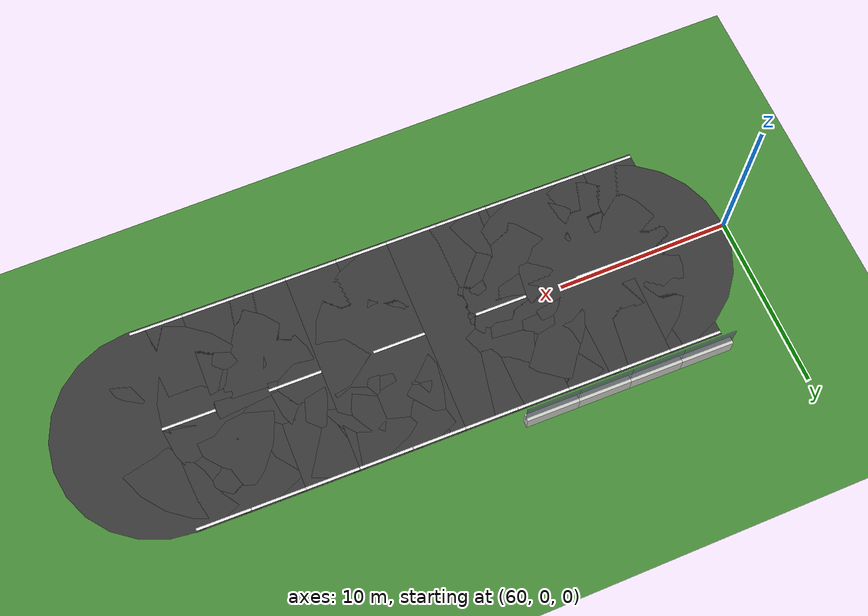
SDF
<sdf version="1.6">
 <world name="sem_silesia_ring_2026">
  <model name="ground_plane">
   <static>true</static>
   <link name="link">
    <collision name="collision">
     <geometry><plane><normal>0 0 1</normal><size>1200 1200</size></plane></geometry>
     <surface><friction><ode><mu>0.6</mu><mu2>0.6</mu2></ode></friction></surface>
    </collision>
    <visual name="visual">
     <geometry><plane><normal>0 0 1</normal><size>1200 1200</size></plane></geometry>
     <material><ambient>0.28 0.55 0.22 1</ambient><diffuse>0.28 0.55 0.22 1</diffuse></material>
    </visual>
   </link>
  </model>
  <model name="road_s21">
   <static>true</static>
   <pose>64.4917 -0.1593 0.0030 0 0 -0.0169</pose>
   <link name="link">
    <visual name="v">
     <geometry><box><size>3.0025 12.0000 0.0060</size></box></geometry>
     <material><ambient>0.22 0.22 0.22 1</ambient><diffuse>0.22 0.22 0.22 1</diffuse></material>
    </visual>
    <collision name="c">
     <geometry><box><size>3.0025 12.0000 0.0060</size></box></geometry>
     <surface><friction><ode><mu>0.9</mu><mu2>0.9</mu2></ode></friction></surface>
    </collision>
   </link>
  </model>
  <model name="wl_L_s21">
   <static>true</static>
   <pose>64.5907 5.6898 0.0070 0 0 -0.0169</pose>
   <link name="link">
    <visual name="v">
     <geometry><box><size>3.0025 0.1500 0.0080</size></box></geometry>
     <material><ambient>0.95 0.95 0.95 1</ambient><diffuse>0.95 0.95 0.95 1</diffuse></material>
    </visual>
   </link>
  </model>
  <model name="wl_R_s21">
   <static>true</static>
   <pose>64.3927 -6.0085 0.0070 0 0 -0.0169</pose>
   <link name="link">
    <visual name="v">
     <geometry><box><size>3.0025 0.1500 0.0080</size></box></geometry>
     <material><ambient>0.95 0.95 0.95 1</ambient><diffuse>0.95 0.95 0.95 1</diffuse></material>
    </visual>
   </link>
  </model>
  <model name="road_s22">
   <static>true</static>
   <pose>67.4938 -0.2084 0.0030 0 0 -0.0158</pose>
   <link name="link">
    <visual name="v">
     <geometry><box><size>3.0025 12.0000 0.0060</size></box></geometry>
     <material><ambient>0.22 0.22 0.22 1</ambient><diffuse>0.22 0.22 0.22 1</diffuse></material>
    </visual>
    <collision name="c">
     <geometry><box><size>3.0025 12.0000 0.0060</size></box></geometry>
     <surface><friction><ode><mu>0.9</mu><mu2>0.9</mu2></ode></friction></surface>
    </collision>
   </link>
  </model>
  <model name="road_jnt22">
   <static>true</static>
   <pose>65.9928 -0.1847 0.0030 0 0 0</pose>
   <link name="link">
    <visual name="v">
     <geometry><cylinder><radius>6.0000</radius><length>0.0060</length></cylinder></geometry>
     <material><ambient>0.22 0.22 0.22 1</ambient><diffuse>0.22 0.22 0.22 1</diffuse></material>
    </visual>
    <collision name="c">
     <geometry><cylinder><radius>6.0000</radius><length>0.0060</length></cylinder></geometry>
     <surface><friction><ode><mu>0.9</mu><mu2>0.9</mu2></ode></friction></surface>
    </collision>
   </link>
  </model>
  <model name="wl_L_s22">
   <static>true</static>
   <pose>67.5861 5.6409 0.0070 0 0 -0.0158</pose>
   <link name="link">
    <visual name="v">
     <geometry><box><size>3.0025 0.1500 0.0080</size></box></geometry>
     <material><ambient>0.95 0.95 0.95 1</ambient><diffuse>0.95 0.95 0.95 1</diffuse></material>
    </visual>
   </link>
  </model>
  <model name="wl_R_s22">
   <static>true</static>
   <pose>67.4016 -6.0577 0.0070 0 0 -0.0158</pose>
   <link name="link">
    <visual name="v">
     <geometry><box><size>3.0025 0.1500 0.0080</size></box></geometry>
     <material><ambient>0.95 0.95 0.95 1</ambient><diffuse>0.95 0.95 0.95 1</diffuse></material>
    </visual>
   </link>
  </model>
  <model name="cd_s22">
   <static>true</static>
   <pose>67.4938 -0.2084 0.0070 0 0 -0.0158</pose>
   <link name="link">
    <visual name="v">
     <geometry><box><size>3.0025 0.1500 0.0080</size></box></geometry>
     <material><ambient>0.95 0.95 0.95 1</ambient><diffuse>0.95 0.95 0.95 1</diffuse></material>
    </visual>
   </link>
  </model>
  <model name="road_s23">
   <static>true</static>
   <pose>70.4960 -0.2546 0.0030 0 0 -0.0150</pose>
   <link name="link">
    <visual name="v">
     <geometry><box><size>3.0025 12.0000 0.0060</size></box></geometry>
     <material><ambient>0.22 0.22 0.22 1</ambient><diffuse>0.22 0.22 0.22 1</diffuse></material>
    </visual>
    <collision name="c">
     <geometry><box><size>3.0025 12.0000 0.0060</size></box></geometry>
     <surface><friction><ode><mu>0.9</mu><mu2>0.9</mu2></ode></friction></surface>
    </collision>
   </link>
  </model>
  <model name="road_jnt23">
   <static>true</static>
   <pose>68.9949 -0.2321 0.0030 0 0 0</pose>
   <link name="link">
    <visual name="v">
     <geometry><cylinder><radius>6.0000</radius><length>0.0060</length></cylinder></geometry>
     <material><ambient>0.22 0.22 0.22 1</ambient><diffuse>0.22 0.22 0.22 1</diffuse></material>
    </visual>
    <collision name="c">
     <geometry><cylinder><radius>6.0000</radius><length>0.0060</length></cylinder></geometry>
     <surface><friction><ode><mu>0.9</mu><mu2>0.9</mu2></ode></friction></surface>
    </collision>
   </link>
  </model>
  <model name="wl_L_s23">
   <static>true</static>
   <pose>70.5839 5.5947 0.0070 0 0 -0.0150</pose>
   <link name="link">
    <visual name="v">
     <geometry><box><size>3.0025 0.1500 0.0080</size></box></geometry>
     <material><ambient>0.95 0.95 0.95 1</ambient><diffuse>0.95 0.95 0.95 1</diffuse></material>
    </visual>
   </link>
  </model>
  <model name="wl_R_s23">
   <static>true</static>
   <pose>70.4082 -6.1040 0.0070 0 0 -0.0150</pose>
   <link name="link">
    <visual name="v">
     <geometry><box><size>3.0025 0.1500 0.0080</size></box></geometry>
     <material><ambient>0.95 0.95 0.95 1</ambient><diffuse>0.95 0.95 0.95 1</diffuse></material>
    </visual>
   </link>
  </model>
  <model name="road_s24">
   <static>true</static>
   <pose>73.4982 -0.2992 0.0030 0 0 -0.0146</pose>
   <link name="link">
    <visual name="v">
     <geometry><box><size>3.0025 12.0000 0.0060</size></box></geometry>
     <material><ambient>0.22 0.22 0.22 1</ambient><diffuse>0.22 0.22 0.22 1</diffuse></material>
    </visual>
    <collision name="c">
     <geometry><box><size>3.0025 12.0000 0.0060</size></box></geometry>
     <surface><friction><ode><mu>0.9</mu><mu2>0.9</mu2></ode></friction></surface>
    </collision>
   </link>
  </model>
  <model name="road_jnt24">
   <static>true</static>
   <pose>71.9971 -0.2772 0.0030 0 0 0</pose>
   <link name="link">
    <visual name="v">
     <geometry><cylinder><radius>6.0000</radius><length>0.0060</length></cylinder></geometry>
     <material><ambient>0.22 0.22 0.22 1</ambient><diffuse>0.22 0.22 0.22 1</diffuse></material>
    </visual>
    <collision name="c">
     <geometry><cylinder><radius>6.0000</radius><length>0.0060</length></cylinder></geometry>
     <surface><friction><ode><mu>0.9</mu><mu2>0.9</mu2></ode></friction></surface>
    </collision>
   </link>
  </model>
  <model name="wl_L_s24">
   <static>true</static>
   <pose>73.5839 5.5502 0.0070 0 0 -0.0146</pose>
   <link name="link">
    <visual name="v">
     <geometry><box><size>3.0025 0.1500 0.0080</size></box></geometry>
     <material><ambient>0.95 0.95 0.95 1</ambient><diffuse>0.95 0.95 0.95 1</diffuse></material>
    </visual>
   </link>
  </model>
  <model name="wl_R_s24">
   <static>true</static>
   <pose>73.4126 -6.1485 0.0070 0 0 -0.0146</pose>
   <link name="link">
    <visual name="v">
     <geometry><box><size>3.0025 0.1500 0.0080</size></box></geometry>
     <material><ambient>0.95 0.95 0.95 1</ambient><diffuse>0.95 0.95 0.95 1</diffuse></material>
    </visual>
   </link>
  </model>
  <model name="cd_s24">
   <static>true</static>
   <pose>73.4982 -0.2992 0.0070 0 0 -0.0146</pose>
   <link name="link">
    <visual name="v">
     <geometry><box><size>3.0025 0.1500 0.0080</size></box></geometry>
     <material><ambient>0.95 0.95 0.95 1</ambient><diffuse>0.95 0.95 0.95 1</diffuse></material>
    </visual>
   </link>
  </model>
  <model name="road_s25">
   <static>true</static>
   <pose>76.5005 -0.3431 0.0030 0 0 -0.0146</pose>
   <link name="link">
    <visual name="v">
     <geometry><box><size>3.0025 12.0000 0.0060</size></box></geometry>
     <material><ambient>0.22 0.22 0.22 1</ambient><diffuse>0.22 0.22 0.22 1</diffuse></material>
    </visual>
    <collision name="c">
     <geometry><box><size>3.0025 12.0000 0.0060</size></box></geometry>
     <surface><friction><ode><mu>0.9</mu><mu2>0.9</mu2></ode></friction></surface>
    </collision>
   </link>
  </model>
  <model name="road_jnt25">
   <static>true</static>
   <pose>74.9993 -0.3211 0.0030 0 0 0</pose>
   <link name="link">
    <visual name="v">
     <geometry><cylinder><radius>6.0000</radius><length>0.0060</length></cylinder></geometry>
     <material><ambient>0.22 0.22 0.22 1</ambient><diffuse>0.22 0.22 0.22 1</diffuse></material>
    </visual>
    <collision name="c">
     <geometry><cylinder><radius>6.0000</radius><length>0.0060</length></cylinder></geometry>
     <surface><friction><ode><mu>0.9</mu><mu2>0.9</mu2></ode></friction></surface>
    </collision>
   </link>
  </model>
  <model name="wl_L_s25">
   <static>true</static>
   <pose>76.5861 5.5063 0.0070 0 0 -0.0146</pose>
   <link name="link">
    <visual name="v">
     <geometry><box><size>3.0025 0.1500 0.0080</size></box></geometry>
     <material><ambient>0.95 0.95 0.95 1</ambient><diffuse>0.95 0.95 0.95 1</diffuse></material>
    </visual>
   </link>
  </model>
  <model name="wl_R_s25">
   <static>true</static>
   <pose>76.4148 -6.1925 0.0070 0 0 -0.0146</pose>
   <link name="link">
    <visual name="v">
     <geometry><box><size>3.0025 0.1500 0.0080</size></box></geometry>
     <material><ambient>0.95 0.95 0.95 1</ambient><diffuse>0.95 0.95 0.95 1</diffuse></material>
    </visual>
   </link>
  </model>
  <model name="road_s26">
   <static>true</static>
   <pose>79.5027 -0.3877 0.0030 0 0 -0.0150</pose>
   <link name="link">
    <visual name="v">
     <geometry><box><size>3.0025 12.0000 0.0060</size></box></geometry>
     <material><ambient>0.22 0.22 0.22 1</ambient><diffuse>0.22 0.22 0.22 1</diffuse></material>
    </visual>
    <collision name="c">
     <geometry><box><size>3.0025 12.0000 0.0060</size></box></geometry>
     <surface><friction><ode><mu>0.9</mu><mu2>0.9</mu2></ode></friction></surface>
    </collision>
   </link>
  </model>
  <model name="road_jnt26">
   <static>true</static>
   <pose>78.0016 -0.3651 0.0030 0 0 0</pose>
   <link name="link">
    <visual name="v">
     <geometry><cylinder><radius>6.0000</radius><length>0.0060</length></cylinder></geometry>
     <material><ambient>0.22 0.22 0.22 1</ambient><diffuse>0.22 0.22 0.22 1</diffuse></material>
    </visual>
    <collision name="c">
     <geometry><cylinder><radius>6.0000</radius><length>0.0060</length></cylinder></geometry>
     <surface><friction><ode><mu>0.9</mu><mu2>0.9</mu2></ode></friction></surface>
    </collision>
   </link>
  </model>
  <model name="wl_L_s26">
   <static>true</static>
   <pose>79.5906 5.4617 0.0070 0 0 -0.0150</pose>
   <link name="link">
    <visual name="v">
     <geometry><box><size>3.0025 0.1500 0.0080</size></box></geometry>
     <material><ambient>0.95 0.95 0.95 1</ambient><diffuse>0.95 0.95 0.95 1</diffuse></material>
    </visual>
   </link>
  </model>
  <model name="wl_R_s26">
   <static>true</static>
   <pose>79.4147 -6.2370 0.0070 0 0 -0.0150</pose>
   <link name="link">
    <visual name="v">
     <geometry><box><size>3.0025 0.1500 0.0080</size></box></geometry>
     <material><ambient>0.95 0.95 0.95 1</ambient><diffuse>0.95 0.95 0.95 1</diffuse></material>
    </visual>
   </link>
  </model>
  <model name="cd_s26">
   <static>true</static>
   <pose>79.5027 -0.3877 0.0070 0 0 -0.0150</pose>
   <link name="link">
    <visual name="v">
     <geometry><box><size>3.0025 0.1500 0.0080</size></box></geometry>
     <material><ambient>0.95 0.95 0.95 1</ambient><diffuse>0.95 0.95 0.95 1</diffuse></material>
    </visual>
   </link>
  </model>
  <model name="road_s27">
   <static>true</static>
   <pose>82.5048 -0.4340 0.0030 0 0 -0.0158</pose>
   <link name="link">
    <visual name="v">
     <geometry><box><size>3.0025 12.0000 0.0060</size></box></geometry>
     <material><ambient>0.22 0.22 0.22 1</ambient><diffuse>0.22 0.22 0.22 1</diffuse></material>
    </visual>
    <collision name="c">
     <geometry><box><size>3.0025 12.0000 0.0060</size></box></geometry>
     <surface><friction><ode><mu>0.9</mu><mu2>0.9</mu2></ode></friction></surface>
    </collision>
   </link>
  </model>
  <model name="road_jnt27">
   <static>true</static>
   <pose>81.0038 -0.4102 0.0030 0 0 0</pose>
   <link name="link">
    <visual name="v">
     <geometry><cylinder><radius>6.0000</radius><length>0.0060</length></cylinder></geometry>
     <material><ambient>0.22 0.22 0.22 1</ambient><diffuse>0.22 0.22 0.22 1</diffuse></material>
    </visual>
    <collision name="c">
     <geometry><cylinder><radius>6.0000</radius><length>0.0060</length></cylinder></geometry>
     <surface><friction><ode><mu>0.9</mu><mu2>0.9</mu2></ode></friction></surface>
    </collision>
   </link>
  </model>
  <model name="wl_L_s27">
   <static>true</static>
   <pose>82.5974 5.4153 0.0070 0 0 -0.0158</pose>
   <link name="link">
    <visual name="v">
     <geometry><box><size>3.0025 0.1500 0.0080</size></box></geometry>
     <material><ambient>0.95 0.95 0.95 1</ambient><diffuse>0.95 0.95 0.95 1</diffuse></material>
    </visual>
   </link>
  </model>
  <model name="wl_R_s27">
   <static>true</static>
   <pose>82.4123 -6.2833 0.0070 0 0 -0.0158</pose>
   <link name="link">
    <visual name="v">
     <geometry><box><size>3.0025 0.1500 0.0080</size></box></geometry>
     <material><ambient>0.95 0.95 0.95 1</ambient><diffuse>0.95 0.95 0.95 1</diffuse></material>
    </visual>
   </link>
  </model>
  <model name="road_s28">
   <static>true</static>
   <pose>85.5070 -0.4832 0.0030 0 0 -0.0170</pose>
   <link name="link">
    <visual name="v">
     <geometry><box><size>3.0025 12.0000 0.0060</size></box></geometry>
     <material><ambient>0.22 0.22 0.22 1</ambient><diffuse>0.22 0.22 0.22 1</diffuse></material>
    </visual>
    <collision name="c">
     <geometry><box><size>3.0025 12.0000 0.0060</size></box></geometry>
     <surface><friction><ode><mu>0.9</mu><mu2>0.9</mu2></ode></friction></surface>
    </collision>
   </link>
  </model>
  <model name="road_jnt28">
   <static>true</static>
   <pose>84.0059 -0.4577 0.0030 0 0 0</pose>
   <link name="link">
    <visual name="v">
     <geometry><cylinder><radius>6.0000</radius><length>0.0060</length></cylinder></geometry>
     <material><ambient>0.22 0.22 0.22 1</ambient><diffuse>0.22 0.22 0.22 1</diffuse></material>
    </visual>
    <collision name="c">
     <geometry><cylinder><radius>6.0000</radius><length>0.0060</length></cylinder></geometry>
     <surface><friction><ode><mu>0.9</mu><mu2>0.9</mu2></ode></friction></surface>
    </collision>
   </link>
  </model>
  <model name="wl_L_s28">
   <static>true</static>
   <pose>85.6064 5.3659 0.0070 0 0 -0.0170</pose>
   <link name="link">
    <visual name="v">
     <geometry><box><size>3.0025 0.1500 0.0080</size></box></geometry>
     <material><ambient>0.95 0.95 0.95 1</ambient><diffuse>0.95 0.95 0.95 1</diffuse></material>
    </visual>
   </link>
  </model>
  <model name="wl_R_s28">
   <static>true</static>
   <pose>85.4076 -6.3324 0.0070 0 0 -0.0170</pose>
   <link name="link">
    <visual name="v">
     <geometry><box><size>3.0025 0.1500 0.0080</size></box></geometry>
     <material><ambient>0.95 0.95 0.95 1</ambient><diffuse>0.95 0.95 0.95 1</diffuse></material>
    </visual>
   </link>
  </model>
  <model name="cd_s28">
   <static>true</static>
   <pose>85.5070 -0.4832 0.0070 0 0 -0.0170</pose>
   <link name="link">
    <visual name="v">
     <geometry><box><size>3.0025 0.1500 0.0080</size></box></geometry>
     <material><ambient>0.95 0.95 0.95 1</ambient><diffuse>0.95 0.95 0.95 1</diffuse></material>
    </visual>
   </link>
  </model>
  <model name="road_s29">
   <static>true</static>
   <pose>88.5090 -0.5366 0.0030 0 0 -0.0186</pose>
   <link name="link">
    <visual name="v">
     <geometry><box><size>3.0025 12.0000 0.0060</size></box></geometry>
     <material><ambient>0.22 0.22 0.22 1</ambient><diffuse>0.22 0.22 0.22 1</diffuse></material>
    </visual>
    <collision name="c">
     <geometry><box><size>3.0025 12.0000 0.0060</size></box></geometry>
     <surface><friction><ode><mu>0.9</mu><mu2>0.9</mu2></ode></friction></surface>
    </collision>
   </link>
  </model>
  <model name="road_jnt29">
   <static>true</static>
   <pose>87.0080 -0.5087 0.0030 0 0 0</pose>
   <link name="link">
    <visual name="v">
     <geometry><cylinder><radius>6.0000</radius><length>0.0060</length></cylinder></geometry>
     <material><ambient>0.22 0.22 0.22 1</ambient><diffuse>0.22 0.22 0.22 1</diffuse></material>
    </visual>
    <collision name="c">
     <geometry><cylinder><radius>6.0000</radius><length>0.0060</length></cylinder></geometry>
     <surface><friction><ode><mu>0.9</mu><mu2>0.9</mu2></ode></friction></surface>
    </collision>
   </link>
  </model>
  <model name="wl_L_s29">
   <static>true</static>
   <pose>88.6176 5.3124 0.0070 0 0 -0.0186</pose>
   <link name="link">
    <visual name="v">
     <geometry><box><size>3.0025 0.1500 0.0080</size></box></geometry>
     <material><ambient>0.95 0.95 0.95 1</ambient><diffuse>0.95 0.95 0.95 1</diffuse></material>
    </visual>
   </link>
  </model>
  <model name="wl_R_s29">
   <static>true</static>
   <pose>88.4004 -6.3856 0.0070 0 0 -0.0186</pose>
   <link name="link">
    <visual name="v">
     <geometry><box><size>3.0025 0.1500 0.0080</size></box></geometry>
     <material><ambient>0.95 0.95 0.95 1</ambient><diffuse>0.95 0.95 0.95 1</diffuse></material>
    </visual>
   </link>
  </model>
  <model name="road_s30">
   <static>true</static>
   <pose>91.5110 -0.5953 0.0030 0 0 -0.0206</pose>
   <link name="link">
    <visual name="v">
     <geometry><box><size>3.0025 12.0000 0.0060</size></box></geometry>
     <material><ambient>0.22 0.22 0.22 1</ambient><diffuse>0.22 0.22 0.22 1</diffuse></material>
    </visual>
    <collision name="c">
     <geometry><box><size>3.0025 12.0000 0.0060</size></box></geometry>
     <surface><friction><ode><mu>0.9</mu><mu2>0.9</mu2></ode></friction></surface>
    </collision>
   </link>
  </model>
  <model name="road_jnt30">
   <static>true</static>
   <pose>90.0100 -0.5645 0.0030 0 0 0</pose>
   <link name="link">
    <visual name="v">
     <geometry><cylinder><radius>6.0000</radius><length>0.0060</length></cylinder></geometry>
     <material><ambient>0.22 0.22 0.22 1</ambient><diffuse>0.22 0.22 0.22 1</diffuse></material>
    </visual>
    <collision name="c">
     <geometry><cylinder><radius>6.0000</radius><length>0.0060</length></cylinder></geometry>
     <surface><friction><ode><mu>0.9</mu><mu2>0.9</mu2></ode></friction></surface>
    </collision>
   </link>
  </model>
  <model name="wl_L_s30">
   <static>true</static>
   <pose>91.6312 5.2534 0.0070 0 0 -0.0206</pose>
   <link name="link">
    <visual name="v">
     <geometry><box><size>3.0025 0.1500 0.0080</size></box></geometry>
     <material><ambient>0.95 0.95 0.95 1</ambient><diffuse>0.95 0.95 0.95 1</diffuse></material>
    </visual>
   </link>
  </model>
  <model name="wl_R_s30">
   <static>true</static>
   <pose>91.3908 -6.4441 0.0070 0 0 -0.0206</pose>
   <link name="link">
    <visual name="v">
     <geometry><box><size>3.0025 0.1500 0.0080</size></box></geometry>
     <material><ambient>0.95 0.95 0.95 1</ambient><diffuse>0.95 0.95 0.95 1</diffuse></material>
    </visual>
   </link>
  </model>
  <model name="cd_s30">
   <static>true</static>
   <pose>91.5110 -0.5953 0.0070 0 0 -0.0206</pose>
   <link name="link">
    <visual name="v">
     <geometry><box><size>3.0025 0.1500 0.0080</size></box></geometry>
     <material><ambient>0.95 0.95 0.95 1</ambient><diffuse>0.95 0.95 0.95 1</diffuse></material>
    </visual>
   </link>
  </model>
  <model name="road_jnt31">
   <static>true</static>
   <pose>93.0119 -0.6262 0.0030 0 0 0</pose>
   <link name="link">
    <visual name="v">
     <geometry><cylinder><radius>6.0000</radius><length>0.0060</length></cylinder></geometry>
     <material><ambient>0.22 0.22 0.22 1</ambient><diffuse>0.22 0.22 0.22 1</diffuse></material>
    </visual>
    <collision name="c">
     <geometry><cylinder><radius>6.0000</radius><length>0.0060</length></cylinder></geometry>
     <surface><friction><ode><mu>0.9</mu><mu2>0.9</mu2></ode></friction></surface>
    </collision>
   </link>
  </model>
  <model name="pit_wall_21">
   <static>true</static>
   <pose>64.6067 6.6397 0.5000 0 0 -0.0169</pose>
   <link name="link">
    <visual name="v">
     <geometry><box><size>3.0025 0.4000 1.0000</size></box></geometry>
     <material><ambient>0.82 0.82 0.80 1</ambient><diffuse>0.82 0.82 0.80 1</diffuse></material>
    </visual>
    <visual name="fence">
     <pose>0 0 1.0 0 0 0</pose>
     <geometry><box><size>3.0025 0.0500 1.5000</size></box></geometry>
     <material><ambient>0.40 0.45 0.50 0.7</ambient><diffuse>0.40 0.45 0.50 0.7</diffuse></material>
    </visual>
    <collision name="c">
     <geometry><box><size>3.0025 0.4000 1.0000</size></box></geometry>
     <surface><friction><ode><mu>0.9</mu><mu2>0.9</mu2></ode></friction></surface>
    </collision>
   </link>
  </model>
  <model name="pit_wall_22">
   <static>true</static>
   <pose>67.6011 6.5907 0.5000 0 0 -0.0158</pose>
   <link name="link">
    <visual name="v">
     <geometry><box><size>3.0025 0.4000 1.0000</size></box></geometry>
     <material><ambient>0.82 0.82 0.80 1</ambient><diffuse>0.82 0.82 0.80 1</diffuse></material>
    </visual>
    <visual name="fence">
     <pose>0 0 1.0 0 0 0</pose>
     <geometry><box><size>3.0025 0.0500 1.5000</size></box></geometry>
     <material><ambient>0.40 0.45 0.50 0.7</ambient><diffuse>0.40 0.45 0.50 0.7</diffuse></material>
    </visual>
    <collision name="c">
     <geometry><box><size>3.0025 0.4000 1.0000</size></box></geometry>
     <surface><friction><ode><mu>0.9</mu><mu2>0.9</mu2></ode></friction></surface>
    </collision>
   </link>
  </model>
  <model name="pit_wall_23">
   <static>true</static>
   <pose>70.5981 6.5446 0.5000 0 0 -0.0150</pose>
   <link name="link">
    <visual name="v">
     <geometry><box><size>3.0025 0.4000 1.0000</size></box></geometry>
     <material><ambient>0.82 0.82 0.80 1</ambient><diffuse>0.82 0.82 0.80 1</diffuse></material>
    </visual>
    <visual name="fence">
     <pose>0 0 1.0 0 0 0</pose>
     <geometry><box><size>3.0025 0.0500 1.5000</size></box></geometry>
     <material><ambient>0.40 0.45 0.50 0.7</ambient><diffuse>0.40 0.45 0.50 0.7</diffuse></material>
    </visual>
    <collision name="c">
     <geometry><box><size>3.0025 0.4000 1.0000</size></box></geometry>
     <surface><friction><ode><mu>0.9</mu><mu2>0.9</mu2></ode></friction></surface>
    </collision>
   </link>
  </model>
  <model name="pit_wall_24">
   <static>true</static>
   <pose>73.5978 6.5001 0.5000 0 0 -0.0146</pose>
   <link name="link">
    <visual name="v">
     <geometry><box><size>3.0025 0.4000 1.0000</size></box></geometry>
     <material><ambient>0.82 0.82 0.80 1</ambient><diffuse>0.82 0.82 0.80 1</diffuse></material>
    </visual>
    <visual name="fence">
     <pose>0 0 1.0 0 0 0</pose>
     <geometry><box><size>3.0025 0.0500 1.5000</size></box></geometry>
     <material><ambient>0.40 0.45 0.50 0.7</ambient><diffuse>0.40 0.45 0.50 0.7</diffuse></material>
    </visual>
    <collision name="c">
     <geometry><box><size>3.0025 0.4000 1.0000</size></box></geometry>
     <surface><friction><ode><mu>0.9</mu><mu2>0.9</mu2></ode></friction></surface>
    </collision>
   </link>
  </model>
 </world>
</sdf>
